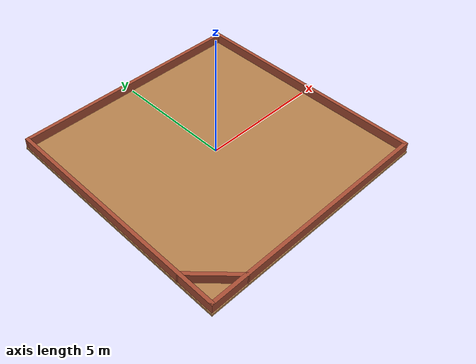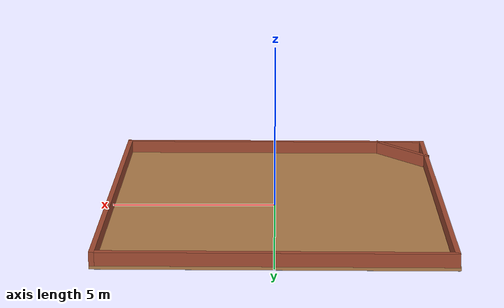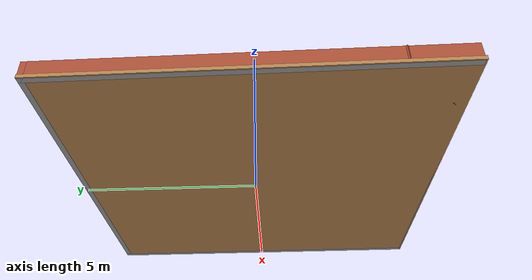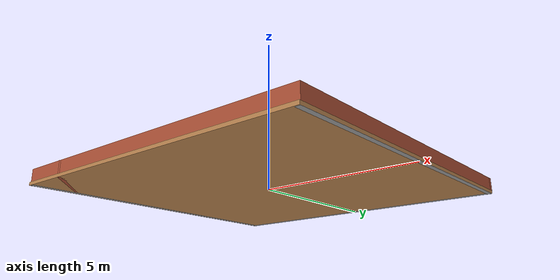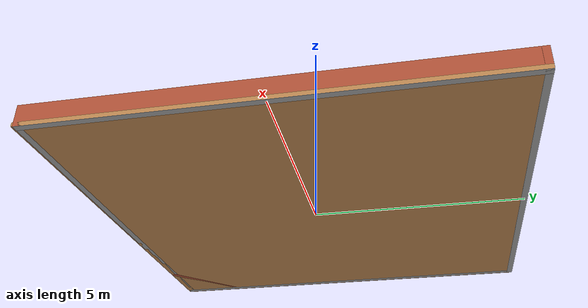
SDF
<?xml version='1.0'?>
<sdf version='1.7'>
  <model name='square_house'>
    <pose>-0.015532 -0.015533 0 0 -0 0</pose>
    <link name='Floor_0'>
      <collision name='Floor_0_Collision'>
        <geometry>
          <box>
            <size>10.1811 10.1811 0.1</size>
          </box>
        </geometry>
        <pose>0 0 0.05 0 -0 0</pose>
      </collision>
      <visual name='Floor_0_Visual'>
        <pose>0 0 0.05 0 -0 0</pose>
        <geometry>
          <box>
            <size>10.1811 10.1811 0.1</size>
          </box>
        </geometry>
        <material>
          <script>
            <uri>file://media/materials/scripts/gazebo.material</uri>
            <name>Gazebo/Wood</name>
          </script>
          <ambient>1 1 1 1</ambient>
        </material>
        <meta>
          <layer>1</layer>
        </meta>
      </visual>
      <pose>-1e-06 -0 0.001 0 -0 0</pose>
    </link>
    <link name='Wall_0'>
      <collision name='Wall_0_Collision'>
        <geometry>
          <box>
            <size>10.15 0.15 0</size>
          </box>
        </geometry>
        <pose>0 0 0.001 0 -0 0</pose>
      </collision>
      <visual name='Wall_0_Visual'>
        <pose>0 0 0.001 0 -0 0</pose>
        <geometry>
          <box>
            <size>10.15 0.15 0</size>
          </box>
        </geometry>
        <material>
          <script>
            <uri>file://media/materials/scripts/gazebo.material</uri>
            <name>Gazebo/Grey</name>
          </script>
          <ambient>1 1 1 1</ambient>
        </material>
        <meta>
          <layer>0</layer>
        </meta>
      </visual>
      <pose>0.015532 -4.98447 0 0 -0 0</pose>
    </link>
    <link name='Wall_1'>
      <collision name='Wall_1_Collision'>
        <geometry>
          <box>
            <size>10.15 0.15 0.001</size>
          </box>
        </geometry>
        <pose>0 0 0.0005 0 -0 0</pose>
      </collision>
      <visual name='Wall_1_Visual'>
        <pose>0 0 0.0005 0 -0 0</pose>
        <geometry>
          <box>
            <size>10.15 0.15 0.001</size>
          </box>
        </geometry>
        <material>
          <script>
            <uri>file://media/materials/scripts/gazebo.material</uri>
            <name>Gazebo/Grey</name>
          </script>
          <ambient>1 1 1 1</ambient>
        </material>
        <meta>
          <layer>0</layer>
        </meta>
      </visual>
      <pose>5.01553 0.015533 0 0 -0 1.5708</pose>
    </link>
    <link name='Wall_2'>
      <collision name='Wall_2_Collision'>
        <geometry>
          <box>
            <size>10.15 0.15 0.001</size>
          </box>
        </geometry>
        <pose>0 0 0.0005 0 -0 0</pose>
      </collision>
      <visual name='Wall_2_Visual'>
        <pose>0 0 0.0005 0 -0 0</pose>
        <geometry>
          <box>
            <size>10.15 0.15 0.001</size>
          </box>
        </geometry>
        <material>
          <script>
            <uri>file://media/materials/scripts/gazebo.material</uri>
            <name>Gazebo/Grey</name>
          </script>
          <ambient>1 1 1 1</ambient>
        </material>
        <meta>
          <layer>0</layer>
        </meta>
      </visual>
      <pose>0.015532 5.01553 0 0 -0 3.14159</pose>
    </link>
    <link name='Wall_3'>
      <collision name='Wall_3_Collision'>
        <geometry>
          <box>
            <size>10.15 0.15 0.001</size>
          </box>
        </geometry>
        <pose>0 0 0.0005 0 -0 0</pose>
      </collision>
      <visual name='Wall_3_Visual'>
        <pose>0 0 0.0005 0 -0 0</pose>
        <geometry>
          <box>
            <size>10.15 0.15 0.001</size>
          </box>
        </geometry>
        <material>
          <script>
            <uri>file://media/materials/scripts/gazebo.material</uri>
            <name>Gazebo/Grey</name>
          </script>
          <ambient>1 1 1 1</ambient>
        </material>
        <meta>
          <layer>0</layer>
        </meta>
      </visual>
      <pose>-4.98447 0.015533 0 0 -0 -1.5708</pose>
    </link>
    <link name='Wall_5'>
      <collision name='Wall_5_Collision'>
        <geometry>
          <box>
            <size>10.15 0.15 0.5</size>
          </box>
        </geometry>
        <pose>0 0 0.25 0 -0 0</pose>
      </collision>
      <visual name='Wall_5_Visual'>
        <pose>0 0 0.25 0 -0 0</pose>
        <geometry>
          <box>
            <size>10.15 0.15 0.5</size>
          </box>
        </geometry>
        <material>
          <script>
            <uri>file://media/materials/scripts/gazebo.material</uri>
            <name>Gazebo/Bricks</name>
          </script>
          <ambient>1 1 1 1</ambient>
        </material>
        <meta>
          <layer>1</layer>
        </meta>
      </visual>
      <pose>0.015532 -4.98447 0.001 0 -0 0</pose>
    </link>
    <link name='Wall_6'>
      <collision name='Wall_6_Collision'>
        <geometry>
          <box>
            <size>10.15 0.15 0.5</size>
          </box>
        </geometry>
        <pose>0 0 0.25 0 -0 0</pose>
      </collision>
      <visual name='Wall_6_Visual'>
        <pose>0 0 0.25 0 -0 0</pose>
        <geometry>
          <box>
            <size>10.15 0.15 0.5</size>
          </box>
        </geometry>
        <material>
          <script>
            <uri>file://media/materials/scripts/gazebo.material</uri>
            <name>Gazebo/Bricks</name>
          </script>
          <ambient>1 1 1 1</ambient>
        </material>
        <meta>
          <layer>1</layer>
        </meta>
      </visual>
      <pose>5.01553 0.015533 0.001 0 -0 1.5708</pose>
    </link>
    <link name='Wall_7'>
      <collision name='Wall_7_Collision'>
        <geometry>
          <box>
            <size>10.15 0.15 0.5</size>
          </box>
        </geometry>
        <pose>0 0 0.25 0 -0 0</pose>
      </collision>
      <visual name='Wall_7_Visual'>
        <pose>0 0 0.25 0 -0 0</pose>
        <geometry>
          <box>
            <size>10.15 0.15 0.5</size>
          </box>
        </geometry>
        <material>
          <script>
            <uri>file://media/materials/scripts/gazebo.material</uri>
            <name>Gazebo/Bricks</name>
          </script>
          <ambient>1 1 1 1</ambient>
        </material>
        <meta>
          <layer>1</layer>
        </meta>
      </visual>
      <pose>0.015532 5.01553 0.001 0 -0 3.14159</pose>
    </link>
    <link name='Wall_8'>
      <collision name='Wall_8_Collision'>
        <geometry>
          <box>
            <size>10.15 0.15 0.5</size>
          </box>
        </geometry>
        <pose>0 0 0.25 0 -0 0</pose>
      </collision>
      <visual name='Wall_8_Visual'>
        <pose>0 0 0.25 0 -0 0</pose>
        <geometry>
          <box>
            <size>10.15 0.15 0.5</size>
          </box>
        </geometry>
        <material>
          <script>
            <uri>file://media/materials/scripts/gazebo.material</uri>
            <name>Gazebo/Bricks</name>
          </script>
          <ambient>1 1 1 1</ambient>
        </material>
        <meta>
          <layer>1</layer>
        </meta>
      </visual>
      <pose>-4.98447 0.015533 0.001 0 -0 -1.5708</pose>
    </link>
    <link name='Wall_9'>
      <collision name='Wall_9_Collision'>
        <geometry>
          <box>
            <size>2.27132 0.15 0.5</size>
          </box>
        </geometry>
        <pose>0 0 0.25 0 -0 0</pose>
      </collision>
      <visual name='Wall_9_Visual'>
        <pose>0 0 0.25 0 -0 0</pose>
        <geometry>
          <box>
            <size>2.27132 0.15 0.5</size>
          </box>
        </geometry>
        <material>
          <script>
            <uri>file://media/materials/scripts/gazebo.material</uri>
            <name>Gazebo/Bricks</name>
          </script>
          <ambient>1 1 1 1</ambient>
        </material>
        <meta>
          <layer>1</layer>
        </meta>
      </visual>
      <pose>-4.23447 -4.23447 0.001 0 -0 -0.785398</pose>
    </link>
    <static>1</static>
  </model>
</sdf>
